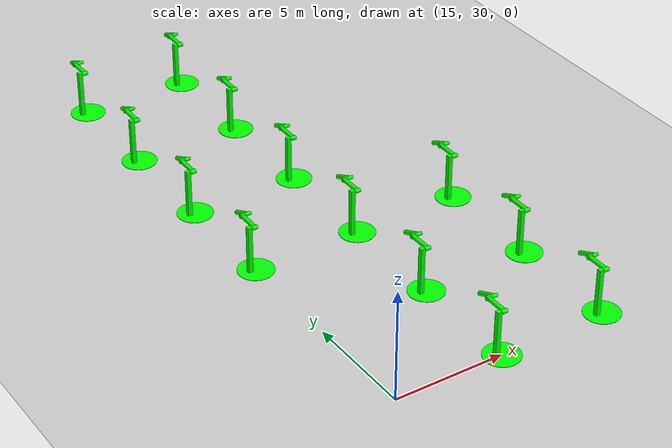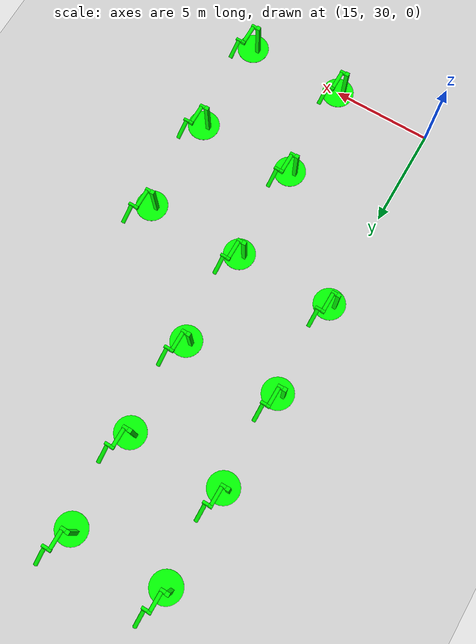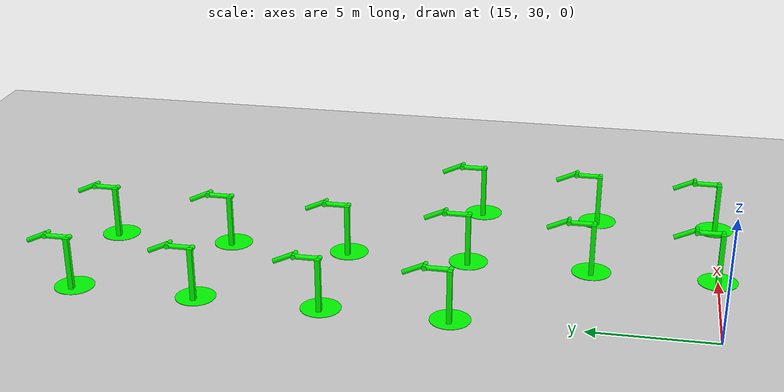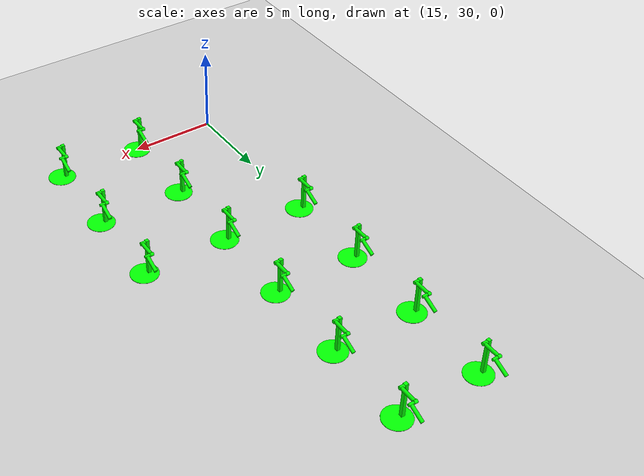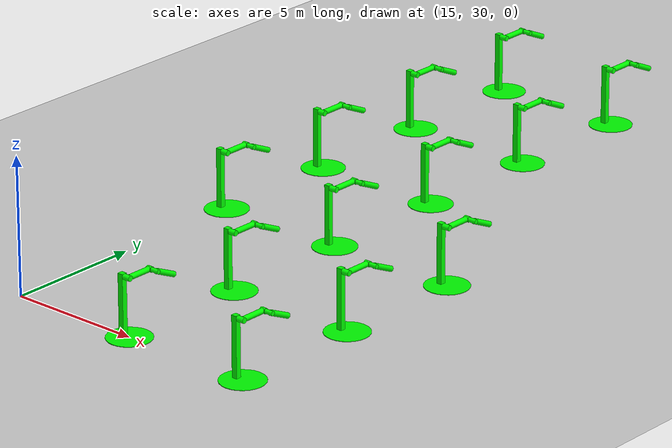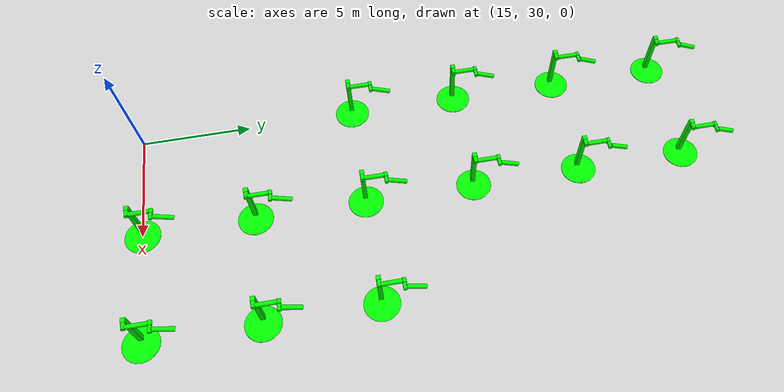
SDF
<sdf version="1.6">
 <world name="double_pendulums">
  <model name="ground_plane">
   <static>true</static>
   <link name="link">
    <collision name="collision">
     <geometry><plane><normal>0 0 1</normal><size>100 100</size></plane></geometry>
    </collision>
    <visual name="visual">
     <geometry><plane><normal>0 0 1</normal><size>100 100</size></plane></geometry>
     <material>
      <ambient>0.8 0.8 0.8 1</ambient>
      <diffuse>0.8 0.8 0.8 1</diffuse>
      <specular>0.8 0.8 0.8 1</specular>
     </material>
    </visual>
   </link>
  </model>
  <model name="dbl_pendulum_164">
   <pose>20 30 0 0 0 0</pose>
   <link name="base">
    <inertial><mass>100</mass></inertial>
    <visual name="vis_plate_on_ground">
     <pose>0 0 0.01 0 0 0</pose>
     <geometry><cylinder><radius>0.8</radius><length>0.02</length></cylinder></geometry>
     <material><ambient>0 1 0 1</ambient><diffuse>0 1 0 1</diffuse><specular>0 1 0 1</specular></material>
    </visual>
    <visual name="vis_pole">
     <pose>-0.275 0 1.1 0 0 0</pose>
     <geometry><box><size>0.2 0.2 2.2</size></box></geometry>
     <material><ambient>0 1 0 1</ambient><diffuse>0 1 0 1</diffuse><specular>0 1 0 1</specular></material>
    </visual>
    <collision name="col_plate_on_ground">
     <pose>0 0 0.01 0 0 0</pose>
     <geometry><cylinder><radius>0.8</radius><length>0.02</length></cylinder></geometry>
    </collision>
    <collision name="col_pole">
     <pose>-0.275 0 1.1 0 0 0</pose>
     <geometry><box><size>0.2 0.2 2.2</size></box></geometry>
    </collision>
   </link>
   <link name="upper_link">
    <pose>0 0 2.1 -1.5708 0 0</pose>
    <inertial><pose>0 0 0.5 0 0 0</pose></inertial>
    <visual name="vis_upper_joint">
     <pose>-0.05 0 0 0 1.5708 0</pose>
     <geometry><cylinder><radius>0.1</radius><length>0.3</length></cylinder></geometry>
     <material><ambient>0 1 0 1</ambient><diffuse>0 1 0 1</diffuse><specular>0 1 0 1</specular></material>
    </visual>
    <visual name="vis_lower_joint">
     <pose>0 0 1.0 0 1.5708 0</pose>
     <geometry><cylinder><radius>0.1</radius><length>0.2</length></cylinder></geometry>
     <material><ambient>0 1 0 1</ambient><diffuse>0 1 0 1</diffuse><specular>0 1 0 1</specular></material>
    </visual>
    <visual name="vis_cylinder">
     <pose>0 0 0.5 0 0 0</pose>
     <geometry><cylinder><radius>0.1</radius><length>0.9</length></cylinder></geometry>
     <material><ambient>0 1 0 1</ambient><diffuse>0 1 0 1</diffuse><specular>0 1 0 1</specular></material>
    </visual>
    <collision name="col_upper_joint">
     <pose>-0.05 0 0 0 1.5708 0</pose>
     <geometry><cylinder><radius>0.1</radius><length>0.3</length></cylinder></geometry>
    </collision>
    <collision name="col_lower_joint">
     <pose>0 0 1.0 0 1.5708 0</pose>
     <geometry><cylinder><radius>0.1</radius><length>0.2</length></cylinder></geometry>
    </collision>
    <collision name="col_cylinder">
     <pose>0 0 0.5 0 0 0</pose>
     <geometry><cylinder><radius>0.1</radius><length>0.9</length></cylinder></geometry>
    </collision>
   </link>
   <link name="lower_link">
    <pose>0.25 1.0 2.1 -2 0 0</pose>
    <inertial><pose>0 0 0.5 0 0 0</pose></inertial>
    <visual name="vis_lower_joint">
     <pose>0 0 0 0 1.5708 0</pose>
     <geometry><cylinder><radius>0.08</radius><length>0.3</length></cylinder></geometry>
     <material><ambient>0 1 0 1</ambient><diffuse>0 1 0 1</diffuse><specular>0 1 0 1</specular></material>
    </visual>
    <visual name="vis_cylinder">
     <pose>0 0 0.5 0 0 0</pose>
     <geometry><cylinder><radius>0.1</radius><length>0.9</length></cylinder></geometry>
     <material><ambient>0 1 0 1</ambient><diffuse>0 1 0 1</diffuse><specular>0 1 0 1</specular></material>
    </visual>
    <collision name="col_lower_joint">
     <pose>0 0 0 0 1.5708 0</pose>
     <geometry><cylinder><radius>0.08</radius><length>0.3</length></cylinder></geometry>
    </collision>
    <collision name="col_cylinder">
     <pose>0 0 0.5 0 0 0</pose>
     <geometry><cylinder><radius>0.1</radius><length>0.9</length></cylinder></geometry>
    </collision>
   </link>
   <joint name="upper_joint" type="revolute">
    <parent>base</parent>
    <child>upper_link</child>
    <axis><xyz>1.0 0 0</xyz></axis>
   </joint>
   <joint name="lower_joint" type="revolute">
    <parent>upper_link</parent>
    <child>lower_link</child>
    <axis><xyz>1.0 0 0</xyz></axis>
   </joint>
  </model>
  <model name="dbl_pendulum_165">
   <pose>25 30 0 0 0 0</pose>
   <link name="base">
    <inertial><mass>100</mass></inertial>
    <visual name="vis_plate_on_ground">
     <pose>0 0 0.01 0 0 0</pose>
     <geometry><cylinder><radius>0.8</radius><length>0.02</length></cylinder></geometry>
     <material><ambient>0 1 0 1</ambient><diffuse>0 1 0 1</diffuse><specular>0 1 0 1</specular></material>
    </visual>
    <visual name="vis_pole">
     <pose>-0.275 0 1.1 0 0 0</pose>
     <geometry><box><size>0.2 0.2 2.2</size></box></geometry>
     <material><ambient>0 1 0 1</ambient><diffuse>0 1 0 1</diffuse><specular>0 1 0 1</specular></material>
    </visual>
    <collision name="col_plate_on_ground">
     <pose>0 0 0.01 0 0 0</pose>
     <geometry><cylinder><radius>0.8</radius><length>0.02</length></cylinder></geometry>
    </collision>
    <collision name="col_pole">
     <pose>-0.275 0 1.1 0 0 0</pose>
     <geometry><box><size>0.2 0.2 2.2</size></box></geometry>
    </collision>
   </link>
   <link name="upper_link">
    <pose>0 0 2.1 -1.5708 0 0</pose>
    <inertial><pose>0 0 0.5 0 0 0</pose></inertial>
    <visual name="vis_upper_joint">
     <pose>-0.05 0 0 0 1.5708 0</pose>
     <geometry><cylinder><radius>0.1</radius><length>0.3</length></cylinder></geometry>
     <material><ambient>0 1 0 1</ambient><diffuse>0 1 0 1</diffuse><specular>0 1 0 1</specular></material>
    </visual>
    <visual name="vis_lower_joint">
     <pose>0 0 1.0 0 1.5708 0</pose>
     <geometry><cylinder><radius>0.1</radius><length>0.2</length></cylinder></geometry>
     <material><ambient>0 1 0 1</ambient><diffuse>0 1 0 1</diffuse><specular>0 1 0 1</specular></material>
    </visual>
    <visual name="vis_cylinder">
     <pose>0 0 0.5 0 0 0</pose>
     <geometry><cylinder><radius>0.1</radius><length>0.9</length></cylinder></geometry>
     <material><ambient>0 1 0 1</ambient><diffuse>0 1 0 1</diffuse><specular>0 1 0 1</specular></material>
    </visual>
    <collision name="col_upper_joint">
     <pose>-0.05 0 0 0 1.5708 0</pose>
     <geometry><cylinder><radius>0.1</radius><length>0.3</length></cylinder></geometry>
    </collision>
    <collision name="col_lower_joint">
     <pose>0 0 1.0 0 1.5708 0</pose>
     <geometry><cylinder><radius>0.1</radius><length>0.2</length></cylinder></geometry>
    </collision>
    <collision name="col_cylinder">
     <pose>0 0 0.5 0 0 0</pose>
     <geometry><cylinder><radius>0.1</radius><length>0.9</length></cylinder></geometry>
    </collision>
   </link>
   <link name="lower_link">
    <pose>0.25 1.0 2.1 -2 0 0</pose>
    <inertial><pose>0 0 0.5 0 0 0</pose></inertial>
    <visual name="vis_lower_joint">
     <pose>0 0 0 0 1.5708 0</pose>
     <geometry><cylinder><radius>0.08</radius><length>0.3</length></cylinder></geometry>
     <material><ambient>0 1 0 1</ambient><diffuse>0 1 0 1</diffuse><specular>0 1 0 1</specular></material>
    </visual>
    <visual name="vis_cylinder">
     <pose>0 0 0.5 0 0 0</pose>
     <geometry><cylinder><radius>0.1</radius><length>0.9</length></cylinder></geometry>
     <material><ambient>0 1 0 1</ambient><diffuse>0 1 0 1</diffuse><specular>0 1 0 1</specular></material>
    </visual>
    <collision name="col_lower_joint">
     <pose>0 0 0 0 1.5708 0</pose>
     <geometry><cylinder><radius>0.08</radius><length>0.3</length></cylinder></geometry>
    </collision>
    <collision name="col_cylinder">
     <pose>0 0 0.5 0 0 0</pose>
     <geometry><cylinder><radius>0.1</radius><length>0.9</length></cylinder></geometry>
    </collision>
   </link>
   <joint name="upper_joint" type="revolute">
    <parent>base</parent>
    <child>upper_link</child>
    <axis><xyz>1.0 0 0</xyz></axis>
   </joint>
   <joint name="lower_joint" type="revolute">
    <parent>upper_link</parent>
    <child>lower_link</child>
    <axis><xyz>1.0 0 0</xyz></axis>
   </joint>
  </model>
  <model name="dbl_pendulum_189">
   <pose>20 35 0 0 0 0</pose>
   <link name="base">
    <inertial><mass>100</mass></inertial>
    <visual name="vis_plate_on_ground">
     <pose>0 0 0.01 0 0 0</pose>
     <geometry><cylinder><radius>0.8</radius><length>0.02</length></cylinder></geometry>
     <material><ambient>0 1 0 1</ambient><diffuse>0 1 0 1</diffuse><specular>0 1 0 1</specular></material>
    </visual>
    <visual name="vis_pole">
     <pose>-0.275 0 1.1 0 0 0</pose>
     <geometry><box><size>0.2 0.2 2.2</size></box></geometry>
     <material><ambient>0 1 0 1</ambient><diffuse>0 1 0 1</diffuse><specular>0 1 0 1</specular></material>
    </visual>
    <collision name="col_plate_on_ground">
     <pose>0 0 0.01 0 0 0</pose>
     <geometry><cylinder><radius>0.8</radius><length>0.02</length></cylinder></geometry>
    </collision>
    <collision name="col_pole">
     <pose>-0.275 0 1.1 0 0 0</pose>
     <geometry><box><size>0.2 0.2 2.2</size></box></geometry>
    </collision>
   </link>
   <link name="upper_link">
    <pose>0 0 2.1 -1.5708 0 0</pose>
    <inertial><pose>0 0 0.5 0 0 0</pose></inertial>
    <visual name="vis_upper_joint">
     <pose>-0.05 0 0 0 1.5708 0</pose>
     <geometry><cylinder><radius>0.1</radius><length>0.3</length></cylinder></geometry>
     <material><ambient>0 1 0 1</ambient><diffuse>0 1 0 1</diffuse><specular>0 1 0 1</specular></material>
    </visual>
    <visual name="vis_lower_joint">
     <pose>0 0 1.0 0 1.5708 0</pose>
     <geometry><cylinder><radius>0.1</radius><length>0.2</length></cylinder></geometry>
     <material><ambient>0 1 0 1</ambient><diffuse>0 1 0 1</diffuse><specular>0 1 0 1</specular></material>
    </visual>
    <visual name="vis_cylinder">
     <pose>0 0 0.5 0 0 0</pose>
     <geometry><cylinder><radius>0.1</radius><length>0.9</length></cylinder></geometry>
     <material><ambient>0 1 0 1</ambient><diffuse>0 1 0 1</diffuse><specular>0 1 0 1</specular></material>
    </visual>
    <collision name="col_upper_joint">
     <pose>-0.05 0 0 0 1.5708 0</pose>
     <geometry><cylinder><radius>0.1</radius><length>0.3</length></cylinder></geometry>
    </collision>
    <collision name="col_lower_joint">
     <pose>0 0 1.0 0 1.5708 0</pose>
     <geometry><cylinder><radius>0.1</radius><length>0.2</length></cylinder></geometry>
    </collision>
    <collision name="col_cylinder">
     <pose>0 0 0.5 0 0 0</pose>
     <geometry><cylinder><radius>0.1</radius><length>0.9</length></cylinder></geometry>
    </collision>
   </link>
   <link name="lower_link">
    <pose>0.25 1.0 2.1 -2 0 0</pose>
    <inertial><pose>0 0 0.5 0 0 0</pose></inertial>
    <visual name="vis_lower_joint">
     <pose>0 0 0 0 1.5708 0</pose>
     <geometry><cylinder><radius>0.08</radius><length>0.3</length></cylinder></geometry>
     <material><ambient>0 1 0 1</ambient><diffuse>0 1 0 1</diffuse><specular>0 1 0 1</specular></material>
    </visual>
    <visual name="vis_cylinder">
     <pose>0 0 0.5 0 0 0</pose>
     <geometry><cylinder><radius>0.1</radius><length>0.9</length></cylinder></geometry>
     <material><ambient>0 1 0 1</ambient><diffuse>0 1 0 1</diffuse><specular>0 1 0 1</specular></material>
    </visual>
    <collision name="col_lower_joint">
     <pose>0 0 0 0 1.5708 0</pose>
     <geometry><cylinder><radius>0.08</radius><length>0.3</length></cylinder></geometry>
    </collision>
    <collision name="col_cylinder">
     <pose>0 0 0.5 0 0 0</pose>
     <geometry><cylinder><radius>0.1</radius><length>0.9</length></cylinder></geometry>
    </collision>
   </link>
   <joint name="upper_joint" type="revolute">
    <parent>base</parent>
    <child>upper_link</child>
    <axis><xyz>1.0 0 0</xyz></axis>
   </joint>
   <joint name="lower_joint" type="revolute">
    <parent>upper_link</parent>
    <child>lower_link</child>
    <axis><xyz>1.0 0 0</xyz></axis>
   </joint>
  </model>
  <model name="dbl_pendulum_190">
   <pose>25 35 0 0 0 0</pose>
   <link name="base">
    <inertial><mass>100</mass></inertial>
    <visual name="vis_plate_on_ground">
     <pose>0 0 0.01 0 0 0</pose>
     <geometry><cylinder><radius>0.8</radius><length>0.02</length></cylinder></geometry>
     <material><ambient>0 1 0 1</ambient><diffuse>0 1 0 1</diffuse><specular>0 1 0 1</specular></material>
    </visual>
    <visual name="vis_pole">
     <pose>-0.275 0 1.1 0 0 0</pose>
     <geometry><box><size>0.2 0.2 2.2</size></box></geometry>
     <material><ambient>0 1 0 1</ambient><diffuse>0 1 0 1</diffuse><specular>0 1 0 1</specular></material>
    </visual>
    <collision name="col_plate_on_ground">
     <pose>0 0 0.01 0 0 0</pose>
     <geometry><cylinder><radius>0.8</radius><length>0.02</length></cylinder></geometry>
    </collision>
    <collision name="col_pole">
     <pose>-0.275 0 1.1 0 0 0</pose>
     <geometry><box><size>0.2 0.2 2.2</size></box></geometry>
    </collision>
   </link>
   <link name="upper_link">
    <pose>0 0 2.1 -1.5708 0 0</pose>
    <inertial><pose>0 0 0.5 0 0 0</pose></inertial>
    <visual name="vis_upper_joint">
     <pose>-0.05 0 0 0 1.5708 0</pose>
     <geometry><cylinder><radius>0.1</radius><length>0.3</length></cylinder></geometry>
     <material><ambient>0 1 0 1</ambient><diffuse>0 1 0 1</diffuse><specular>0 1 0 1</specular></material>
    </visual>
    <visual name="vis_lower_joint">
     <pose>0 0 1.0 0 1.5708 0</pose>
     <geometry><cylinder><radius>0.1</radius><length>0.2</length></cylinder></geometry>
     <material><ambient>0 1 0 1</ambient><diffuse>0 1 0 1</diffuse><specular>0 1 0 1</specular></material>
    </visual>
    <visual name="vis_cylinder">
     <pose>0 0 0.5 0 0 0</pose>
     <geometry><cylinder><radius>0.1</radius><length>0.9</length></cylinder></geometry>
     <material><ambient>0 1 0 1</ambient><diffuse>0 1 0 1</diffuse><specular>0 1 0 1</specular></material>
    </visual>
    <collision name="col_upper_joint">
     <pose>-0.05 0 0 0 1.5708 0</pose>
     <geometry><cylinder><radius>0.1</radius><length>0.3</length></cylinder></geometry>
    </collision>
    <collision name="col_lower_joint">
     <pose>0 0 1.0 0 1.5708 0</pose>
     <geometry><cylinder><radius>0.1</radius><length>0.2</length></cylinder></geometry>
    </collision>
    <collision name="col_cylinder">
     <pose>0 0 0.5 0 0 0</pose>
     <geometry><cylinder><radius>0.1</radius><length>0.9</length></cylinder></geometry>
    </collision>
   </link>
   <link name="lower_link">
    <pose>0.25 1.0 2.1 -2 0 0</pose>
    <inertial><pose>0 0 0.5 0 0 0</pose></inertial>
    <visual name="vis_lower_joint">
     <pose>0 0 0 0 1.5708 0</pose>
     <geometry><cylinder><radius>0.08</radius><length>0.3</length></cylinder></geometry>
     <material><ambient>0 1 0 1</ambient><diffuse>0 1 0 1</diffuse><specular>0 1 0 1</specular></material>
    </visual>
    <visual name="vis_cylinder">
     <pose>0 0 0.5 0 0 0</pose>
     <geometry><cylinder><radius>0.1</radius><length>0.9</length></cylinder></geometry>
     <material><ambient>0 1 0 1</ambient><diffuse>0 1 0 1</diffuse><specular>0 1 0 1</specular></material>
    </visual>
    <collision name="col_lower_joint">
     <pose>0 0 0 0 1.5708 0</pose>
     <geometry><cylinder><radius>0.08</radius><length>0.3</length></cylinder></geometry>
    </collision>
    <collision name="col_cylinder">
     <pose>0 0 0.5 0 0 0</pose>
     <geometry><cylinder><radius>0.1</radius><length>0.9</length></cylinder></geometry>
    </collision>
   </link>
   <joint name="upper_joint" type="revolute">
    <parent>base</parent>
    <child>upper_link</child>
    <axis><xyz>1.0 0 0</xyz></axis>
   </joint>
   <joint name="lower_joint" type="revolute">
    <parent>upper_link</parent>
    <child>lower_link</child>
    <axis><xyz>1.0 0 0</xyz></axis>
   </joint>
  </model>
  <model name="dbl_pendulum_213">
   <pose>15 40 0 0 0 0</pose>
   <link name="base">
    <inertial><mass>100</mass></inertial>
    <visual name="vis_plate_on_ground">
     <pose>0 0 0.01 0 0 0</pose>
     <geometry><cylinder><radius>0.8</radius><length>0.02</length></cylinder></geometry>
     <material><ambient>0 1 0 1</ambient><diffuse>0 1 0 1</diffuse><specular>0 1 0 1</specular></material>
    </visual>
    <visual name="vis_pole">
     <pose>-0.275 0 1.1 0 0 0</pose>
     <geometry><box><size>0.2 0.2 2.2</size></box></geometry>
     <material><ambient>0 1 0 1</ambient><diffuse>0 1 0 1</diffuse><specular>0 1 0 1</specular></material>
    </visual>
    <collision name="col_plate_on_ground">
     <pose>0 0 0.01 0 0 0</pose>
     <geometry><cylinder><radius>0.8</radius><length>0.02</length></cylinder></geometry>
    </collision>
    <collision name="col_pole">
     <pose>-0.275 0 1.1 0 0 0</pose>
     <geometry><box><size>0.2 0.2 2.2</size></box></geometry>
    </collision>
   </link>
   <link name="upper_link">
    <pose>0 0 2.1 -1.5708 0 0</pose>
    <inertial><pose>0 0 0.5 0 0 0</pose></inertial>
    <visual name="vis_upper_joint">
     <pose>-0.05 0 0 0 1.5708 0</pose>
     <geometry><cylinder><radius>0.1</radius><length>0.3</length></cylinder></geometry>
     <material><ambient>0 1 0 1</ambient><diffuse>0 1 0 1</diffuse><specular>0 1 0 1</specular></material>
    </visual>
    <visual name="vis_lower_joint">
     <pose>0 0 1.0 0 1.5708 0</pose>
     <geometry><cylinder><radius>0.1</radius><length>0.2</length></cylinder></geometry>
     <material><ambient>0 1 0 1</ambient><diffuse>0 1 0 1</diffuse><specular>0 1 0 1</specular></material>
    </visual>
    <visual name="vis_cylinder">
     <pose>0 0 0.5 0 0 0</pose>
     <geometry><cylinder><radius>0.1</radius><length>0.9</length></cylinder></geometry>
     <material><ambient>0 1 0 1</ambient><diffuse>0 1 0 1</diffuse><specular>0 1 0 1</specular></material>
    </visual>
    <collision name="col_upper_joint">
     <pose>-0.05 0 0 0 1.5708 0</pose>
     <geometry><cylinder><radius>0.1</radius><length>0.3</length></cylinder></geometry>
    </collision>
    <collision name="col_lower_joint">
     <pose>0 0 1.0 0 1.5708 0</pose>
     <geometry><cylinder><radius>0.1</radius><length>0.2</length></cylinder></geometry>
    </collision>
    <collision name="col_cylinder">
     <pose>0 0 0.5 0 0 0</pose>
     <geometry><cylinder><radius>0.1</radius><length>0.9</length></cylinder></geometry>
    </collision>
   </link>
   <link name="lower_link">
    <pose>0.25 1.0 2.1 -2 0 0</pose>
    <inertial><pose>0 0 0.5 0 0 0</pose></inertial>
    <visual name="vis_lower_joint">
     <pose>0 0 0 0 1.5708 0</pose>
     <geometry><cylinder><radius>0.08</radius><length>0.3</length></cylinder></geometry>
     <material><ambient>0 1 0 1</ambient><diffuse>0 1 0 1</diffuse><specular>0 1 0 1</specular></material>
    </visual>
    <visual name="vis_cylinder">
     <pose>0 0 0.5 0 0 0</pose>
     <geometry><cylinder><radius>0.1</radius><length>0.9</length></cylinder></geometry>
     <material><ambient>0 1 0 1</ambient><diffuse>0 1 0 1</diffuse><specular>0 1 0 1</specular></material>
    </visual>
    <collision name="col_lower_joint">
     <pose>0 0 0 0 1.5708 0</pose>
     <geometry><cylinder><radius>0.08</radius><length>0.3</length></cylinder></geometry>
    </collision>
    <collision name="col_cylinder">
     <pose>0 0 0.5 0 0 0</pose>
     <geometry><cylinder><radius>0.1</radius><length>0.9</length></cylinder></geometry>
    </collision>
   </link>
   <joint name="upper_joint" type="revolute">
    <parent>base</parent>
    <child>upper_link</child>
    <axis><xyz>1.0 0 0</xyz></axis>
   </joint>
   <joint name="lower_joint" type="revolute">
    <parent>upper_link</parent>
    <child>lower_link</child>
    <axis><xyz>1.0 0 0</xyz></axis>
   </joint>
  </model>
  <model name="dbl_pendulum_214">
   <pose>20 40 0 0 0 0</pose>
   <link name="base">
    <inertial><mass>100</mass></inertial>
    <visual name="vis_plate_on_ground">
     <pose>0 0 0.01 0 0 0</pose>
     <geometry><cylinder><radius>0.8</radius><length>0.02</length></cylinder></geometry>
     <material><ambient>0 1 0 1</ambient><diffuse>0 1 0 1</diffuse><specular>0 1 0 1</specular></material>
    </visual>
    <visual name="vis_pole">
     <pose>-0.275 0 1.1 0 0 0</pose>
     <geometry><box><size>0.2 0.2 2.2</size></box></geometry>
     <material><ambient>0 1 0 1</ambient><diffuse>0 1 0 1</diffuse><specular>0 1 0 1</specular></material>
    </visual>
    <collision name="col_plate_on_ground">
     <pose>0 0 0.01 0 0 0</pose>
     <geometry><cylinder><radius>0.8</radius><length>0.02</length></cylinder></geometry>
    </collision>
    <collision name="col_pole">
     <pose>-0.275 0 1.1 0 0 0</pose>
     <geometry><box><size>0.2 0.2 2.2</size></box></geometry>
    </collision>
   </link>
   <link name="upper_link">
    <pose>0 0 2.1 -1.5708 0 0</pose>
    <inertial><pose>0 0 0.5 0 0 0</pose></inertial>
    <visual name="vis_upper_joint">
     <pose>-0.05 0 0 0 1.5708 0</pose>
     <geometry><cylinder><radius>0.1</radius><length>0.3</length></cylinder></geometry>
     <material><ambient>0 1 0 1</ambient><diffuse>0 1 0 1</diffuse><specular>0 1 0 1</specular></material>
    </visual>
    <visual name="vis_lower_joint">
     <pose>0 0 1.0 0 1.5708 0</pose>
     <geometry><cylinder><radius>0.1</radius><length>0.2</length></cylinder></geometry>
     <material><ambient>0 1 0 1</ambient><diffuse>0 1 0 1</diffuse><specular>0 1 0 1</specular></material>
    </visual>
    <visual name="vis_cylinder">
     <pose>0 0 0.5 0 0 0</pose>
     <geometry><cylinder><radius>0.1</radius><length>0.9</length></cylinder></geometry>
     <material><ambient>0 1 0 1</ambient><diffuse>0 1 0 1</diffuse><specular>0 1 0 1</specular></material>
    </visual>
    <collision name="col_upper_joint">
     <pose>-0.05 0 0 0 1.5708 0</pose>
     <geometry><cylinder><radius>0.1</radius><length>0.3</length></cylinder></geometry>
    </collision>
    <collision name="col_lower_joint">
     <pose>0 0 1.0 0 1.5708 0</pose>
     <geometry><cylinder><radius>0.1</radius><length>0.2</length></cylinder></geometry>
    </collision>
    <collision name="col_cylinder">
     <pose>0 0 0.5 0 0 0</pose>
     <geometry><cylinder><radius>0.1</radius><length>0.9</length></cylinder></geometry>
    </collision>
   </link>
   <link name="lower_link">
    <pose>0.25 1.0 2.1 -2 0 0</pose>
    <inertial><pose>0 0 0.5 0 0 0</pose></inertial>
    <visual name="vis_lower_joint">
     <pose>0 0 0 0 1.5708 0</pose>
     <geometry><cylinder><radius>0.08</radius><length>0.3</length></cylinder></geometry>
     <material><ambient>0 1 0 1</ambient><diffuse>0 1 0 1</diffuse><specular>0 1 0 1</specular></material>
    </visual>
    <visual name="vis_cylinder">
     <pose>0 0 0.5 0 0 0</pose>
     <geometry><cylinder><radius>0.1</radius><length>0.9</length></cylinder></geometry>
     <material><ambient>0 1 0 1</ambient><diffuse>0 1 0 1</diffuse><specular>0 1 0 1</specular></material>
    </visual>
    <collision name="col_lower_joint">
     <pose>0 0 0 0 1.5708 0</pose>
     <geometry><cylinder><radius>0.08</radius><length>0.3</length></cylinder></geometry>
    </collision>
    <collision name="col_cylinder">
     <pose>0 0 0.5 0 0 0</pose>
     <geometry><cylinder><radius>0.1</radius><length>0.9</length></cylinder></geometry>
    </collision>
   </link>
   <joint name="upper_joint" type="revolute">
    <parent>base</parent>
    <child>upper_link</child>
    <axis><xyz>1.0 0 0</xyz></axis>
   </joint>
   <joint name="lower_joint" type="revolute">
    <parent>upper_link</parent>
    <child>lower_link</child>
    <axis><xyz>1.0 0 0</xyz></axis>
   </joint>
  </model>
  <model name="dbl_pendulum_215">
   <pose>25 40 0 0 0 0</pose>
   <link name="base">
    <inertial><mass>100</mass></inertial>
    <visual name="vis_plate_on_ground">
     <pose>0 0 0.01 0 0 0</pose>
     <geometry><cylinder><radius>0.8</radius><length>0.02</length></cylinder></geometry>
     <material><ambient>0 1 0 1</ambient><diffuse>0 1 0 1</diffuse><specular>0 1 0 1</specular></material>
    </visual>
    <visual name="vis_pole">
     <pose>-0.275 0 1.1 0 0 0</pose>
     <geometry><box><size>0.2 0.2 2.2</size></box></geometry>
     <material><ambient>0 1 0 1</ambient><diffuse>0 1 0 1</diffuse><specular>0 1 0 1</specular></material>
    </visual>
    <collision name="col_plate_on_ground">
     <pose>0 0 0.01 0 0 0</pose>
     <geometry><cylinder><radius>0.8</radius><length>0.02</length></cylinder></geometry>
    </collision>
    <collision name="col_pole">
     <pose>-0.275 0 1.1 0 0 0</pose>
     <geometry><box><size>0.2 0.2 2.2</size></box></geometry>
    </collision>
   </link>
   <link name="upper_link">
    <pose>0 0 2.1 -1.5708 0 0</pose>
    <inertial><pose>0 0 0.5 0 0 0</pose></inertial>
    <visual name="vis_upper_joint">
     <pose>-0.05 0 0 0 1.5708 0</pose>
     <geometry><cylinder><radius>0.1</radius><length>0.3</length></cylinder></geometry>
     <material><ambient>0 1 0 1</ambient><diffuse>0 1 0 1</diffuse><specular>0 1 0 1</specular></material>
    </visual>
    <visual name="vis_lower_joint">
     <pose>0 0 1.0 0 1.5708 0</pose>
     <geometry><cylinder><radius>0.1</radius><length>0.2</length></cylinder></geometry>
     <material><ambient>0 1 0 1</ambient><diffuse>0 1 0 1</diffuse><specular>0 1 0 1</specular></material>
    </visual>
    <visual name="vis_cylinder">
     <pose>0 0 0.5 0 0 0</pose>
     <geometry><cylinder><radius>0.1</radius><length>0.9</length></cylinder></geometry>
     <material><ambient>0 1 0 1</ambient><diffuse>0 1 0 1</diffuse><specular>0 1 0 1</specular></material>
    </visual>
    <collision name="col_upper_joint">
     <pose>-0.05 0 0 0 1.5708 0</pose>
     <geometry><cylinder><radius>0.1</radius><length>0.3</length></cylinder></geometry>
    </collision>
    <collision name="col_lower_joint">
     <pose>0 0 1.0 0 1.5708 0</pose>
     <geometry><cylinder><radius>0.1</radius><length>0.2</length></cylinder></geometry>
    </collision>
    <collision name="col_cylinder">
     <pose>0 0 0.5 0 0 0</pose>
     <geometry><cylinder><radius>0.1</radius><length>0.9</length></cylinder></geometry>
    </collision>
   </link>
   <link name="lower_link">
    <pose>0.25 1.0 2.1 -2 0 0</pose>
    <inertial><pose>0 0 0.5 0 0 0</pose></inertial>
    <visual name="vis_lower_joint">
     <pose>0 0 0 0 1.5708 0</pose>
     <geometry><cylinder><radius>0.08</radius><length>0.3</length></cylinder></geometry>
     <material><ambient>0 1 0 1</ambient><diffuse>0 1 0 1</diffuse><specular>0 1 0 1</specular></material>
    </visual>
    <visual name="vis_cylinder">
     <pose>0 0 0.5 0 0 0</pose>
     <geometry><cylinder><radius>0.1</radius><length>0.9</length></cylinder></geometry>
     <material><ambient>0 1 0 1</ambient><diffuse>0 1 0 1</diffuse><specular>0 1 0 1</specular></material>
    </visual>
    <collision name="col_lower_joint">
     <pose>0 0 0 0 1.5708 0</pose>
     <geometry><cylinder><radius>0.08</radius><length>0.3</length></cylinder></geometry>
    </collision>
    <collision name="col_cylinder">
     <pose>0 0 0.5 0 0 0</pose>
     <geometry><cylinder><radius>0.1</radius><length>0.9</length></cylinder></geometry>
    </collision>
   </link>
   <joint name="upper_joint" type="revolute">
    <parent>base</parent>
    <child>upper_link</child>
    <axis><xyz>1.0 0 0</xyz></axis>
   </joint>
   <joint name="lower_joint" type="revolute">
    <parent>upper_link</parent>
    <child>lower_link</child>
    <axis><xyz>1.0 0 0</xyz></axis>
   </joint>
  </model>
  <model name="dbl_pendulum_238">
   <pose>15 45 0 0 0 0</pose>
   <link name="base">
    <inertial><mass>100</mass></inertial>
    <visual name="vis_plate_on_ground">
     <pose>0 0 0.01 0 0 0</pose>
     <geometry><cylinder><radius>0.8</radius><length>0.02</length></cylinder></geometry>
     <material><ambient>0 1 0 1</ambient><diffuse>0 1 0 1</diffuse><specular>0 1 0 1</specular></material>
    </visual>
    <visual name="vis_pole">
     <pose>-0.275 0 1.1 0 0 0</pose>
     <geometry><box><size>0.2 0.2 2.2</size></box></geometry>
     <material><ambient>0 1 0 1</ambient><diffuse>0 1 0 1</diffuse><specular>0 1 0 1</specular></material>
    </visual>
    <collision name="col_plate_on_ground">
     <pose>0 0 0.01 0 0 0</pose>
     <geometry><cylinder><radius>0.8</radius><length>0.02</length></cylinder></geometry>
    </collision>
    <collision name="col_pole">
     <pose>-0.275 0 1.1 0 0 0</pose>
     <geometry><box><size>0.2 0.2 2.2</size></box></geometry>
    </collision>
   </link>
   <link name="upper_link">
    <pose>0 0 2.1 -1.5708 0 0</pose>
    <inertial><pose>0 0 0.5 0 0 0</pose></inertial>
    <visual name="vis_upper_joint">
     <pose>-0.05 0 0 0 1.5708 0</pose>
     <geometry><cylinder><radius>0.1</radius><length>0.3</length></cylinder></geometry>
     <material><ambient>0 1 0 1</ambient><diffuse>0 1 0 1</diffuse><specular>0 1 0 1</specular></material>
    </visual>
    <visual name="vis_lower_joint">
     <pose>0 0 1.0 0 1.5708 0</pose>
     <geometry><cylinder><radius>0.1</radius><length>0.2</length></cylinder></geometry>
     <material><ambient>0 1 0 1</ambient><diffuse>0 1 0 1</diffuse><specular>0 1 0 1</specular></material>
    </visual>
    <visual name="vis_cylinder">
     <pose>0 0 0.5 0 0 0</pose>
     <geometry><cylinder><radius>0.1</radius><length>0.9</length></cylinder></geometry>
     <material><ambient>0 1 0 1</ambient><diffuse>0 1 0 1</diffuse><specular>0 1 0 1</specular></material>
    </visual>
    <collision name="col_upper_joint">
     <pose>-0.05 0 0 0 1.5708 0</pose>
     <geometry><cylinder><radius>0.1</radius><length>0.3</length></cylinder></geometry>
    </collision>
    <collision name="col_lower_joint">
     <pose>0 0 1.0 0 1.5708 0</pose>
     <geometry><cylinder><radius>0.1</radius><length>0.2</length></cylinder></geometry>
    </collision>
    <collision name="col_cylinder">
     <pose>0 0 0.5 0 0 0</pose>
     <geometry><cylinder><radius>0.1</radius><length>0.9</length></cylinder></geometry>
    </collision>
   </link>
   <link name="lower_link">
    <pose>0.25 1.0 2.1 -2 0 0</pose>
    <inertial><pose>0 0 0.5 0 0 0</pose></inertial>
    <visual name="vis_lower_joint">
     <pose>0 0 0 0 1.5708 0</pose>
     <geometry><cylinder><radius>0.08</radius><length>0.3</length></cylinder></geometry>
     <material><ambient>0 1 0 1</ambient><diffuse>0 1 0 1</diffuse><specular>0 1 0 1</specular></material>
    </visual>
    <visual name="vis_cylinder">
     <pose>0 0 0.5 0 0 0</pose>
     <geometry><cylinder><radius>0.1</radius><length>0.9</length></cylinder></geometry>
     <material><ambient>0 1 0 1</ambient><diffuse>0 1 0 1</diffuse><specular>0 1 0 1</specular></material>
    </visual>
    <collision name="col_lower_joint">
     <pose>0 0 0 0 1.5708 0</pose>
     <geometry><cylinder><radius>0.08</radius><length>0.3</length></cylinder></geometry>
    </collision>
    <collision name="col_cylinder">
     <pose>0 0 0.5 0 0 0</pose>
     <geometry><cylinder><radius>0.1</radius><length>0.9</length></cylinder></geometry>
    </collision>
   </link>
   <joint name="upper_joint" type="revolute">
    <parent>base</parent>
    <child>upper_link</child>
    <axis><xyz>1.0 0 0</xyz></axis>
   </joint>
   <joint name="lower_joint" type="revolute">
    <parent>upper_link</parent>
    <child>lower_link</child>
    <axis><xyz>1.0 0 0</xyz></axis>
   </joint>
  </model>
  <model name="dbl_pendulum_239">
   <pose>20 45 0 0 0 0</pose>
   <link name="base">
    <inertial><mass>100</mass></inertial>
    <visual name="vis_plate_on_ground">
     <pose>0 0 0.01 0 0 0</pose>
     <geometry><cylinder><radius>0.8</radius><length>0.02</length></cylinder></geometry>
     <material><ambient>0 1 0 1</ambient><diffuse>0 1 0 1</diffuse><specular>0 1 0 1</specular></material>
    </visual>
    <visual name="vis_pole">
     <pose>-0.275 0 1.1 0 0 0</pose>
     <geometry><box><size>0.2 0.2 2.2</size></box></geometry>
     <material><ambient>0 1 0 1</ambient><diffuse>0 1 0 1</diffuse><specular>0 1 0 1</specular></material>
    </visual>
    <collision name="col_plate_on_ground">
     <pose>0 0 0.01 0 0 0</pose>
     <geometry><cylinder><radius>0.8</radius><length>0.02</length></cylinder></geometry>
    </collision>
    <collision name="col_pole">
     <pose>-0.275 0 1.1 0 0 0</pose>
     <geometry><box><size>0.2 0.2 2.2</size></box></geometry>
    </collision>
   </link>
   <link name="upper_link">
    <pose>0 0 2.1 -1.5708 0 0</pose>
    <inertial><pose>0 0 0.5 0 0 0</pose></inertial>
    <visual name="vis_upper_joint">
     <pose>-0.05 0 0 0 1.5708 0</pose>
     <geometry><cylinder><radius>0.1</radius><length>0.3</length></cylinder></geometry>
     <material><ambient>0 1 0 1</ambient><diffuse>0 1 0 1</diffuse><specular>0 1 0 1</specular></material>
    </visual>
    <visual name="vis_lower_joint">
     <pose>0 0 1.0 0 1.5708 0</pose>
     <geometry><cylinder><radius>0.1</radius><length>0.2</length></cylinder></geometry>
     <material><ambient>0 1 0 1</ambient><diffuse>0 1 0 1</diffuse><specular>0 1 0 1</specular></material>
    </visual>
    <visual name="vis_cylinder">
     <pose>0 0 0.5 0 0 0</pose>
     <geometry><cylinder><radius>0.1</radius><length>0.9</length></cylinder></geometry>
     <material><ambient>0 1 0 1</ambient><diffuse>0 1 0 1</diffuse><specular>0 1 0 1</specular></material>
    </visual>
    <collision name="col_upper_joint">
     <pose>-0.05 0 0 0 1.5708 0</pose>
     <geometry><cylinder><radius>0.1</radius><length>0.3</length></cylinder></geometry>
    </collision>
    <collision name="col_lower_joint">
     <pose>0 0 1.0 0 1.5708 0</pose>
     <geometry><cylinder><radius>0.1</radius><length>0.2</length></cylinder></geometry>
    </collision>
    <collision name="col_cylinder">
     <pose>0 0 0.5 0 0 0</pose>
     <geometry><cylinder><radius>0.1</radius><length>0.9</length></cylinder></geometry>
    </collision>
   </link>
   <link name="lower_link">
    <pose>0.25 1.0 2.1 -2 0 0</pose>
    <inertial><pose>0 0 0.5 0 0 0</pose></inertial>
    <visual name="vis_lower_joint">
     <pose>0 0 0 0 1.5708 0</pose>
     <geometry><cylinder><radius>0.08</radius><length>0.3</length></cylinder></geometry>
     <material><ambient>0 1 0 1</ambient><diffuse>0 1 0 1</diffuse><specular>0 1 0 1</specular></material>
    </visual>
    <visual name="vis_cylinder">
     <pose>0 0 0.5 0 0 0</pose>
     <geometry><cylinder><radius>0.1</radius><length>0.9</length></cylinder></geometry>
     <material><ambient>0 1 0 1</ambient><diffuse>0 1 0 1</diffuse><specular>0 1 0 1</specular></material>
    </visual>
    <collision name="col_lower_joint">
     <pose>0 0 0 0 1.5708 0</pose>
     <geometry><cylinder><radius>0.08</radius><length>0.3</length></cylinder></geometry>
    </collision>
    <collision name="col_cylinder">
     <pose>0 0 0.5 0 0 0</pose>
     <geometry><cylinder><radius>0.1</radius><length>0.9</length></cylinder></geometry>
    </collision>
   </link>
   <joint name="upper_joint" type="revolute">
    <parent>base</parent>
    <child>upper_link</child>
    <axis><xyz>1.0 0 0</xyz></axis>
   </joint>
   <joint name="lower_joint" type="revolute">
    <parent>upper_link</parent>
    <child>lower_link</child>
    <axis><xyz>1.0 0 0</xyz></axis>
   </joint>
  </model>
  <model name="dbl_pendulum_263">
   <pose>15 50 0 0 0 0</pose>
   <link name="base">
    <inertial><mass>100</mass></inertial>
    <visual name="vis_plate_on_ground">
     <pose>0 0 0.01 0 0 0</pose>
     <geometry><cylinder><radius>0.8</radius><length>0.02</length></cylinder></geometry>
     <material><ambient>0 1 0 1</ambient><diffuse>0 1 0 1</diffuse><specular>0 1 0 1</specular></material>
    </visual>
    <visual name="vis_pole">
     <pose>-0.275 0 1.1 0 0 0</pose>
     <geometry><box><size>0.2 0.2 2.2</size></box></geometry>
     <material><ambient>0 1 0 1</ambient><diffuse>0 1 0 1</diffuse><specular>0 1 0 1</specular></material>
    </visual>
    <collision name="col_plate_on_ground">
     <pose>0 0 0.01 0 0 0</pose>
     <geometry><cylinder><radius>0.8</radius><length>0.02</length></cylinder></geometry>
    </collision>
    <collision name="col_pole">
     <pose>-0.275 0 1.1 0 0 0</pose>
     <geometry><box><size>0.2 0.2 2.2</size></box></geometry>
    </collision>
   </link>
   <link name="upper_link">
    <pose>0 0 2.1 -1.5708 0 0</pose>
    <inertial><pose>0 0 0.5 0 0 0</pose></inertial>
    <visual name="vis_upper_joint">
     <pose>-0.05 0 0 0 1.5708 0</pose>
     <geometry><cylinder><radius>0.1</radius><length>0.3</length></cylinder></geometry>
     <material><ambient>0 1 0 1</ambient><diffuse>0 1 0 1</diffuse><specular>0 1 0 1</specular></material>
    </visual>
    <visual name="vis_lower_joint">
     <pose>0 0 1.0 0 1.5708 0</pose>
     <geometry><cylinder><radius>0.1</radius><length>0.2</length></cylinder></geometry>
     <material><ambient>0 1 0 1</ambient><diffuse>0 1 0 1</diffuse><specular>0 1 0 1</specular></material>
    </visual>
    <visual name="vis_cylinder">
     <pose>0 0 0.5 0 0 0</pose>
     <geometry><cylinder><radius>0.1</radius><length>0.9</length></cylinder></geometry>
     <material><ambient>0 1 0 1</ambient><diffuse>0 1 0 1</diffuse><specular>0 1 0 1</specular></material>
    </visual>
    <collision name="col_upper_joint">
     <pose>-0.05 0 0 0 1.5708 0</pose>
     <geometry><cylinder><radius>0.1</radius><length>0.3</length></cylinder></geometry>
    </collision>
    <collision name="col_lower_joint">
     <pose>0 0 1.0 0 1.5708 0</pose>
     <geometry><cylinder><radius>0.1</radius><length>0.2</length></cylinder></geometry>
    </collision>
    <collision name="col_cylinder">
     <pose>0 0 0.5 0 0 0</pose>
     <geometry><cylinder><radius>0.1</radius><length>0.9</length></cylinder></geometry>
    </collision>
   </link>
   <link name="lower_link">
    <pose>0.25 1.0 2.1 -2 0 0</pose>
    <inertial><pose>0 0 0.5 0 0 0</pose></inertial>
    <visual name="vis_lower_joint">
     <pose>0 0 0 0 1.5708 0</pose>
     <geometry><cylinder><radius>0.08</radius><length>0.3</length></cylinder></geometry>
     <material><ambient>0 1 0 1</ambient><diffuse>0 1 0 1</diffuse><specular>0 1 0 1</specular></material>
    </visual>
    <visual name="vis_cylinder">
     <pose>0 0 0.5 0 0 0</pose>
     <geometry><cylinder><radius>0.1</radius><length>0.9</length></cylinder></geometry>
     <material><ambient>0 1 0 1</ambient><diffuse>0 1 0 1</diffuse><specular>0 1 0 1</specular></material>
    </visual>
    <collision name="col_lower_joint">
     <pose>0 0 0 0 1.5708 0</pose>
     <geometry><cylinder><radius>0.08</radius><length>0.3</length></cylinder></geometry>
    </collision>
    <collision name="col_cylinder">
     <pose>0 0 0.5 0 0 0</pose>
     <geometry><cylinder><radius>0.1</radius><length>0.9</length></cylinder></geometry>
    </collision>
   </link>
   <joint name="upper_joint" type="revolute">
    <parent>base</parent>
    <child>upper_link</child>
    <axis><xyz>1.0 0 0</xyz></axis>
   </joint>
   <joint name="lower_joint" type="revolute">
    <parent>upper_link</parent>
    <child>lower_link</child>
    <axis><xyz>1.0 0 0</xyz></axis>
   </joint>
  </model>
  <model name="dbl_pendulum_264">
   <pose>20 50 0 0 0 0</pose>
   <link name="base">
    <inertial><mass>100</mass></inertial>
    <visual name="vis_plate_on_ground">
     <pose>0 0 0.01 0 0 0</pose>
     <geometry><cylinder><radius>0.8</radius><length>0.02</length></cylinder></geometry>
     <material><ambient>0 1 0 1</ambient><diffuse>0 1 0 1</diffuse><specular>0 1 0 1</specular></material>
    </visual>
    <visual name="vis_pole">
     <pose>-0.275 0 1.1 0 0 0</pose>
     <geometry><box><size>0.2 0.2 2.2</size></box></geometry>
     <material><ambient>0 1 0 1</ambient><diffuse>0 1 0 1</diffuse><specular>0 1 0 1</specular></material>
    </visual>
    <collision name="col_plate_on_ground">
     <pose>0 0 0.01 0 0 0</pose>
     <geometry><cylinder><radius>0.8</radius><length>0.02</length></cylinder></geometry>
    </collision>
    <collision name="col_pole">
     <pose>-0.275 0 1.1 0 0 0</pose>
     <geometry><box><size>0.2 0.2 2.2</size></box></geometry>
    </collision>
   </link>
   <link name="upper_link">
    <pose>0 0 2.1 -1.5708 0 0</pose>
    <inertial><pose>0 0 0.5 0 0 0</pose></inertial>
    <visual name="vis_upper_joint">
     <pose>-0.05 0 0 0 1.5708 0</pose>
     <geometry><cylinder><radius>0.1</radius><length>0.3</length></cylinder></geometry>
     <material><ambient>0 1 0 1</ambient><diffuse>0 1 0 1</diffuse><specular>0 1 0 1</specular></material>
    </visual>
    <visual name="vis_lower_joint">
     <pose>0 0 1.0 0 1.5708 0</pose>
     <geometry><cylinder><radius>0.1</radius><length>0.2</length></cylinder></geometry>
     <material><ambient>0 1 0 1</ambient><diffuse>0 1 0 1</diffuse><specular>0 1 0 1</specular></material>
    </visual>
    <visual name="vis_cylinder">
     <pose>0 0 0.5 0 0 0</pose>
     <geometry><cylinder><radius>0.1</radius><length>0.9</length></cylinder></geometry>
     <material><ambient>0 1 0 1</ambient><diffuse>0 1 0 1</diffuse><specular>0 1 0 1</specular></material>
    </visual>
    <collision name="col_upper_joint">
     <pose>-0.05 0 0 0 1.5708 0</pose>
     <geometry><cylinder><radius>0.1</radius><length>0.3</length></cylinder></geometry>
    </collision>
    <collision name="col_lower_joint">
     <pose>0 0 1.0 0 1.5708 0</pose>
     <geometry><cylinder><radius>0.1</radius><length>0.2</length></cylinder></geometry>
    </collision>
    <collision name="col_cylinder">
     <pose>0 0 0.5 0 0 0</pose>
     <geometry><cylinder><radius>0.1</radius><length>0.9</length></cylinder></geometry>
    </collision>
   </link>
   <link name="lower_link">
    <pose>0.25 1.0 2.1 -2 0 0</pose>
    <inertial><pose>0 0 0.5 0 0 0</pose></inertial>
    <visual name="vis_lower_joint">
     <pose>0 0 0 0 1.5708 0</pose>
     <geometry><cylinder><radius>0.08</radius><length>0.3</length></cylinder></geometry>
     <material><ambient>0 1 0 1</ambient><diffuse>0 1 0 1</diffuse><specular>0 1 0 1</specular></material>
    </visual>
    <visual name="vis_cylinder">
     <pose>0 0 0.5 0 0 0</pose>
     <geometry><cylinder><radius>0.1</radius><length>0.9</length></cylinder></geometry>
     <material><ambient>0 1 0 1</ambient><diffuse>0 1 0 1</diffuse><specular>0 1 0 1</specular></material>
    </visual>
    <collision name="col_lower_joint">
     <pose>0 0 0 0 1.5708 0</pose>
     <geometry><cylinder><radius>0.08</radius><length>0.3</length></cylinder></geometry>
    </collision>
    <collision name="col_cylinder">
     <pose>0 0 0.5 0 0 0</pose>
     <geometry><cylinder><radius>0.1</radius><length>0.9</length></cylinder></geometry>
    </collision>
   </link>
   <joint name="upper_joint" type="revolute">
    <parent>base</parent>
    <child>upper_link</child>
    <axis><xyz>1.0 0 0</xyz></axis>
   </joint>
   <joint name="lower_joint" type="revolute">
    <parent>upper_link</parent>
    <child>lower_link</child>
    <axis><xyz>1.0 0 0</xyz></axis>
   </joint>
  </model>
  <model name="dbl_pendulum_288">
   <pose>15 55 0 0 0 0</pose>
   <link name="base">
    <inertial><mass>100</mass></inertial>
    <visual name="vis_plate_on_ground">
     <pose>0 0 0.01 0 0 0</pose>
     <geometry><cylinder><radius>0.8</radius><length>0.02</length></cylinder></geometry>
     <material><ambient>0 1 0 1</ambient><diffuse>0 1 0 1</diffuse><specular>0 1 0 1</specular></material>
    </visual>
    <visual name="vis_pole">
     <pose>-0.275 0 1.1 0 0 0</pose>
     <geometry><box><size>0.2 0.2 2.2</size></box></geometry>
     <material><ambient>0 1 0 1</ambient><diffuse>0 1 0 1</diffuse><specular>0 1 0 1</specular></material>
    </visual>
    <collision name="col_plate_on_ground">
     <pose>0 0 0.01 0 0 0</pose>
     <geometry><cylinder><radius>0.8</radius><length>0.02</length></cylinder></geometry>
    </collision>
    <collision name="col_pole">
     <pose>-0.275 0 1.1 0 0 0</pose>
     <geometry><box><size>0.2 0.2 2.2</size></box></geometry>
    </collision>
   </link>
   <link name="upper_link">
    <pose>0 0 2.1 -1.5708 0 0</pose>
    <inertial><pose>0 0 0.5 0 0 0</pose></inertial>
    <visual name="vis_upper_joint">
     <pose>-0.05 0 0 0 1.5708 0</pose>
     <geometry><cylinder><radius>0.1</radius><length>0.3</length></cylinder></geometry>
     <material><ambient>0 1 0 1</ambient><diffuse>0 1 0 1</diffuse><specular>0 1 0 1</specular></material>
    </visual>
    <visual name="vis_lower_joint">
     <pose>0 0 1.0 0 1.5708 0</pose>
     <geometry><cylinder><radius>0.1</radius><length>0.2</length></cylinder></geometry>
     <material><ambient>0 1 0 1</ambient><diffuse>0 1 0 1</diffuse><specular>0 1 0 1</specular></material>
    </visual>
    <visual name="vis_cylinder">
     <pose>0 0 0.5 0 0 0</pose>
     <geometry><cylinder><radius>0.1</radius><length>0.9</length></cylinder></geometry>
     <material><ambient>0 1 0 1</ambient><diffuse>0 1 0 1</diffuse><specular>0 1 0 1</specular></material>
    </visual>
    <collision name="col_upper_joint">
     <pose>-0.05 0 0 0 1.5708 0</pose>
     <geometry><cylinder><radius>0.1</radius><length>0.3</length></cylinder></geometry>
    </collision>
    <collision name="col_lower_joint">
     <pose>0 0 1.0 0 1.5708 0</pose>
     <geometry><cylinder><radius>0.1</radius><length>0.2</length></cylinder></geometry>
    </collision>
    <collision name="col_cylinder">
     <pose>0 0 0.5 0 0 0</pose>
     <geometry><cylinder><radius>0.1</radius><length>0.9</length></cylinder></geometry>
    </collision>
   </link>
   <link name="lower_link">
    <pose>0.25 1.0 2.1 -2 0 0</pose>
    <inertial><pose>0 0 0.5 0 0 0</pose></inertial>
    <visual name="vis_lower_joint">
     <pose>0 0 0 0 1.5708 0</pose>
     <geometry><cylinder><radius>0.08</radius><length>0.3</length></cylinder></geometry>
     <material><ambient>0 1 0 1</ambient><diffuse>0 1 0 1</diffuse><specular>0 1 0 1</specular></material>
    </visual>
    <visual name="vis_cylinder">
     <pose>0 0 0.5 0 0 0</pose>
     <geometry><cylinder><radius>0.1</radius><length>0.9</length></cylinder></geometry>
     <material><ambient>0 1 0 1</ambient><diffuse>0 1 0 1</diffuse><specular>0 1 0 1</specular></material>
    </visual>
    <collision name="col_lower_joint">
     <pose>0 0 0 0 1.5708 0</pose>
     <geometry><cylinder><radius>0.08</radius><length>0.3</length></cylinder></geometry>
    </collision>
    <collision name="col_cylinder">
     <pose>0 0 0.5 0 0 0</pose>
     <geometry><cylinder><radius>0.1</radius><length>0.9</length></cylinder></geometry>
    </collision>
   </link>
   <joint name="upper_joint" type="revolute">
    <parent>base</parent>
    <child>upper_link</child>
    <axis><xyz>1.0 0 0</xyz></axis>
   </joint>
   <joint name="lower_joint" type="revolute">
    <parent>upper_link</parent>
    <child>lower_link</child>
    <axis><xyz>1.0 0 0</xyz></axis>
   </joint>
  </model>
  <model name="dbl_pendulum_289">
   <pose>20 55 0 0 0 0</pose>
   <link name="base">
    <inertial><mass>100</mass></inertial>
    <visual name="vis_plate_on_ground">
     <pose>0 0 0.01 0 0 0</pose>
     <geometry><cylinder><radius>0.8</radius><length>0.02</length></cylinder></geometry>
     <material><ambient>0 1 0 1</ambient><diffuse>0 1 0 1</diffuse><specular>0 1 0 1</specular></material>
    </visual>
    <visual name="vis_pole">
     <pose>-0.275 0 1.1 0 0 0</pose>
     <geometry><box><size>0.2 0.2 2.2</size></box></geometry>
     <material><ambient>0 1 0 1</ambient><diffuse>0 1 0 1</diffuse><specular>0 1 0 1</specular></material>
    </visual>
    <collision name="col_plate_on_ground">
     <pose>0 0 0.01 0 0 0</pose>
     <geometry><cylinder><radius>0.8</radius><length>0.02</length></cylinder></geometry>
    </collision>
    <collision name="col_pole">
     <pose>-0.275 0 1.1 0 0 0</pose>
     <geometry><box><size>0.2 0.2 2.2</size></box></geometry>
    </collision>
   </link>
   <link name="upper_link">
    <pose>0 0 2.1 -1.5708 0 0</pose>
    <inertial><pose>0 0 0.5 0 0 0</pose></inertial>
    <visual name="vis_upper_joint">
     <pose>-0.05 0 0 0 1.5708 0</pose>
     <geometry><cylinder><radius>0.1</radius><length>0.3</length></cylinder></geometry>
     <material><ambient>0 1 0 1</ambient><diffuse>0 1 0 1</diffuse><specular>0 1 0 1</specular></material>
    </visual>
    <visual name="vis_lower_joint">
     <pose>0 0 1.0 0 1.5708 0</pose>
     <geometry><cylinder><radius>0.1</radius><length>0.2</length></cylinder></geometry>
     <material><ambient>0 1 0 1</ambient><diffuse>0 1 0 1</diffuse><specular>0 1 0 1</specular></material>
    </visual>
    <visual name="vis_cylinder">
     <pose>0 0 0.5 0 0 0</pose>
     <geometry><cylinder><radius>0.1</radius><length>0.9</length></cylinder></geometry>
     <material><ambient>0 1 0 1</ambient><diffuse>0 1 0 1</diffuse><specular>0 1 0 1</specular></material>
    </visual>
    <collision name="col_upper_joint">
     <pose>-0.05 0 0 0 1.5708 0</pose>
     <geometry><cylinder><radius>0.1</radius><length>0.3</length></cylinder></geometry>
    </collision>
    <collision name="col_lower_joint">
     <pose>0 0 1.0 0 1.5708 0</pose>
     <geometry><cylinder><radius>0.1</radius><length>0.2</length></cylinder></geometry>
    </collision>
    <collision name="col_cylinder">
     <pose>0 0 0.5 0 0 0</pose>
     <geometry><cylinder><radius>0.1</radius><length>0.9</length></cylinder></geometry>
    </collision>
   </link>
   <link name="lower_link">
    <pose>0.25 1.0 2.1 -2 0 0</pose>
    <inertial><pose>0 0 0.5 0 0 0</pose></inertial>
    <visual name="vis_lower_joint">
     <pose>0 0 0 0 1.5708 0</pose>
     <geometry><cylinder><radius>0.08</radius><length>0.3</length></cylinder></geometry>
     <material><ambient>0 1 0 1</ambient><diffuse>0 1 0 1</diffuse><specular>0 1 0 1</specular></material>
    </visual>
    <visual name="vis_cylinder">
     <pose>0 0 0.5 0 0 0</pose>
     <geometry><cylinder><radius>0.1</radius><length>0.9</length></cylinder></geometry>
     <material><ambient>0 1 0 1</ambient><diffuse>0 1 0 1</diffuse><specular>0 1 0 1</specular></material>
    </visual>
    <collision name="col_lower_joint">
     <pose>0 0 0 0 1.5708 0</pose>
     <geometry><cylinder><radius>0.08</radius><length>0.3</length></cylinder></geometry>
    </collision>
    <collision name="col_cylinder">
     <pose>0 0 0.5 0 0 0</pose>
     <geometry><cylinder><radius>0.1</radius><length>0.9</length></cylinder></geometry>
    </collision>
   </link>
   <joint name="upper_joint" type="revolute">
    <parent>base</parent>
    <child>upper_link</child>
    <axis><xyz>1.0 0 0</xyz></axis>
   </joint>
   <joint name="lower_joint" type="revolute">
    <parent>upper_link</parent>
    <child>lower_link</child>
    <axis><xyz>1.0 0 0</xyz></axis>
   </joint>
  </model>
 </world>
</sdf>
